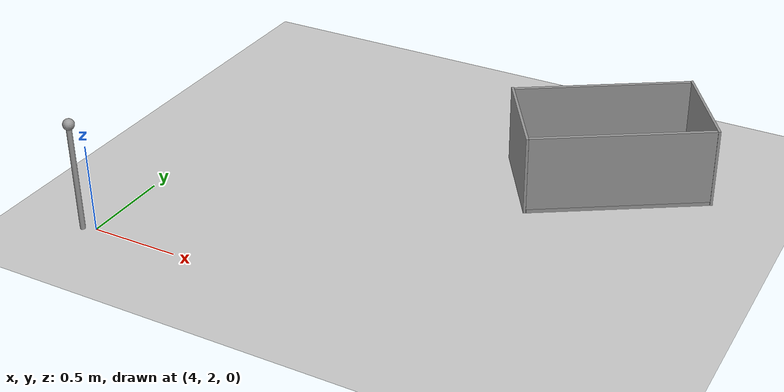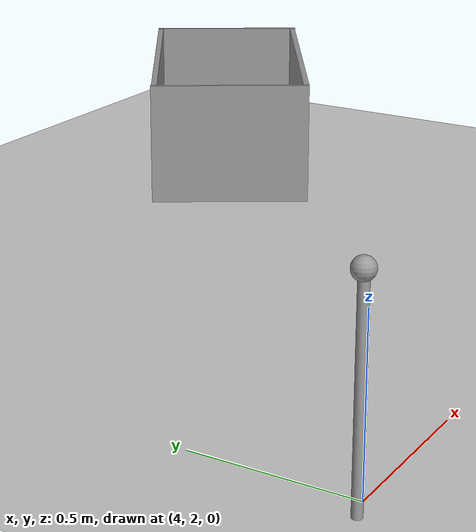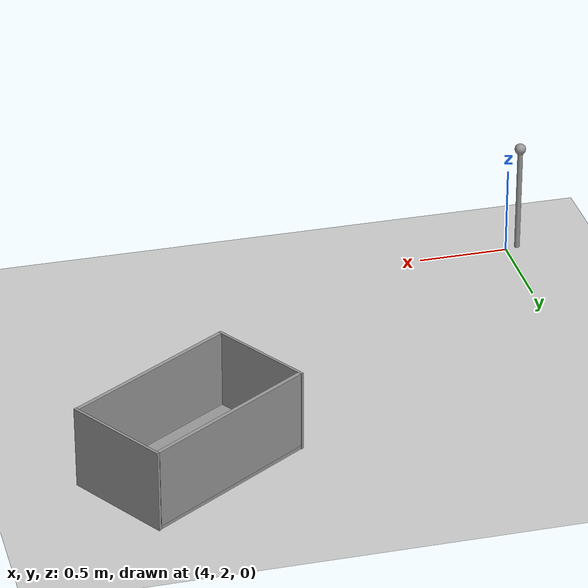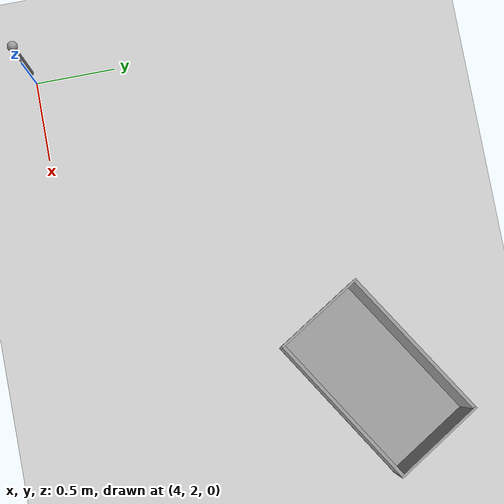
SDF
<sdf version="1.7">
 <world name="default">
  <light name="sun" type="directional">
   <pose>0 0 10 0 -0 0</pose>
   <diffuse>0.8 0.8 0.8 1</diffuse>
   <specular>0.2 0.2 0.2 1</specular>
   <attenuation>
    <range>1000</range>
    <constant>0.9</constant>
    <linear>0.01</linear>
    <quadratic>0.001</quadratic>
   </attenuation>
   <direction>-0.5 0.1 -0.9</direction>
   <spot><inner_angle>0</inner_angle><outer_angle>0</outer_angle><falloff>0</falloff></spot>
  </light>
  <model name="ground_plane">
   <static>1</static>
   <link name="link">
    <collision name="collision">
     <geometry><plane><normal>0 0 1</normal><size>100 100</size></plane></geometry>
     <surface>
      <contact><collide_bitmask>65535</collide_bitmask></contact>
      <friction><ode><mu>100</mu><mu2>50</mu2></ode></friction>
     </surface>
    </collision>
    <visual name="visual">
     <cast_shadows>0</cast_shadows>
     <geometry><plane><normal>0 0 1</normal><size>100 100</size></plane></geometry>
     <material>
      <script><uri>file://media/materials/scripts/gazebo.material</uri><name>Gazebo/Grey</name></script>
     </material>
    </visual>
   </link>
  </model>
  <gravity>0 0 -9.8</gravity>
  <magnetic_field>6e-06 2.3e-05 -4.2e-05</magnetic_field>
  <atmosphere type="adiabatic"/>
  <physics type="ode">
   <max_step_size>0.001</max_step_size>
   <real_time_factor>1</real_time_factor>
   <real_time_update_rate>1000</real_time_update_rate>
  </physics>
  <scene><ambient>0.4 0.4 0.4 1</ambient><background>0.7 0.7 0.7 1</background><shadows>1</shadows></scene>
  <spherical_coordinates>
   <surface_model>EARTH_WGS84</surface_model>
   <latitude_deg>0</latitude_deg>
   <longitude_deg>0</longitude_deg>
   <elevation>0</elevation>
   <heading_deg>0</heading_deg>
  </spherical_coordinates>
  <model name="unit_cylinder">
   <pose>3.92844 1.97948 0.299512 -1.6e-05 8e-06 0.111052</pose>
   <link name="link">
    <inertial>
     <mass>100</mass>
     <inertia><ixx>0.145833</ixx><ixy>0</ixy><ixz>0</ixz><iyy>0.145833</iyy><iyz>0</iyz><izz>0.125</izz></inertia>
    </inertial>
    <collision name="collision">
     <geometry><cylinder><radius>0.0147884</radius><length>0.599063</length></cylinder></geometry>
    </collision>
    <visual name="visual">
     <geometry><cylinder><radius>0.0147884</radius><length>0.599063</length></cylinder></geometry>
     <material>
      <script><name>Gazebo/Grey</name><uri>file://media/materials/scripts/gazebo.material</uri></script>
     </material>
    </visual>
   </link>
  </model>
  <model name="unit_sphere">
   <pose>3.92973 1.98105 0.622497 -0.000895 0.001166 -1e-06</pose>
   <link name="link">
    <inertial>
     <mass>0.02</mass>
     <inertia><ixx>0.1</ixx><ixy>0</ixy><ixz>0</ixz><iyy>0.1</iyy><iyz>0</iyz><izz>0.1</izz></inertia>
    </inertial>
    <collision name="collision"><geometry><sphere><radius>0.0312711</radius></sphere></geometry></collision>
    <visual name="visual">
     <geometry><sphere><radius>0.0312711</radius></sphere></geometry>
     <material>
      <script><name>Gazebo/Grey</name><uri>file://media/materials/scripts/gazebo.material</uri></script>
     </material>
    </visual>
   </link>
  </model>
  <model name="unit_box_1">
   <pose>6.1999 3.71762 0.010946 3.2e-05 -0 0.561026</pose>
   <link name="link">
    <inertial>
     <mass>1</mass>
     <inertia>
      <ixx>0.166667</ixx>
      <ixy>0</ixy>
      <ixz>0</ixz>
      <iyy>0.166667</iyy>
      <iyz>0</iyz>
      <izz>0.166667</izz>
     </inertia>
    </inertial>
    <collision name="collision"><geometry><box><size>1 0.588725 0.021948</size></box></geometry></collision>
    <visual name="visual">
     <geometry><box><size>1 0.588725 0.021948</size></box></geometry>
     <material>
      <script><name>Gazebo/Grey</name><uri>file://media/materials/scripts/gazebo.material</uri></script>
     </material>
    </visual>
   </link>
  </model>
  <model name="unit_box_3">
   <pose>6.04739 3.95954 0.237869 -6.6e-05 -1.3e-05 0.563555</pose>
   <link name="link">
    <inertial>
     <mass>1</mass>
     <inertia>
      <ixx>0.166667</ixx>
      <ixy>0</ixy>
      <ixz>0</ixz>
      <iyy>0.166667</iyy>
      <iyz>0</iyz>
      <izz>0.166667</izz>
     </inertia>
    </inertial>
    <collision name="collision">
     <geometry><box><size>0.998746 0.021107 0.431854</size></box></geometry>
    </collision>
    <visual name="visual">
     <geometry><box><size>0.998746 0.021107 0.431854</size></box></geometry>
     <material>
      <script><name>Gazebo/Grey</name><uri>file://media/materials/scripts/gazebo.material</uri></script>
     </material>
    </visual>
   </link>
  </model>
  <model name="unit_box_5">
   <pose>6.3512 3.47726 0.237838 7.5e-05 -0 0.561043</pose>
   <link name="link">
    <inertial>
     <mass>1</mass>
     <inertia>
      <ixx>0.166667</ixx>
      <ixy>0</ixy>
      <ixz>0</ixz>
      <iyy>0.166667</iyy>
      <iyz>0</iyz>
      <izz>0.166667</izz>
     </inertia>
    </inertial>
    <collision name="collision"><geometry><box><size>1.00317 0.021107 0.431854</size></box></geometry></collision>
    <visual name="visual">
     <geometry><box><size>1.00317 0.021107 0.431854</size></box></geometry>
     <material>
      <script><name>Gazebo/Grey</name><uri>file://media/materials/scripts/gazebo.material</uri></script>
     </material>
    </visual>
   </link>
  </model>
  <model name="unit_box_2">
   <pose>6.62984 3.98879 0.227641 1.1e-05 0.000362 0.564447</pose>
   <link name="link">
    <inertial>
     <mass>1</mass>
     <inertia>
      <ixx>0.166667</ixx>
      <ixy>0</ixy>
      <ixz>0</ixz>
      <iyy>0.166667</iyy>
      <iyz>0</iyz>
      <izz>0.166667</izz>
     </inertia>
    </inertial>
    <collision name="collision">
     <geometry><box><size>0.014373 0.593766 0.455284</size></box></geometry>
    </collision>
    <visual name="visual">
     <geometry><box><size>0.014373 0.593766 0.455284</size></box></geometry>
     <material>
      <script><name>Gazebo/Grey</name><uri>file://media/materials/scripts/gazebo.material</uri></script>
     </material>
    </visual>
   </link>
  </model>
  <model name="unit_box_4">
   <pose>5.76894 3.44872 0.227054 -1e-06 -0.000231 0.558535</pose>
   <link name="link">
    <inertial>
     <mass>1</mass>
     <inertia>
      <ixx>0.166667</ixx>
      <ixy>0</ixy>
      <ixz>0</ixz>
      <iyy>0.166667</iyy>
      <iyz>0</iyz>
      <izz>0.166667</izz>
     </inertia>
    </inertial>
    <collision name="collision">
     <geometry><box><size>0.014373 0.592029 0.454103</size></box></geometry>
    </collision>
    <visual name="visual">
     <geometry><box><size>0.014373 0.592029 0.454103</size></box></geometry>
     <material>
      <script><name>Gazebo/Grey</name><uri>file://media/materials/scripts/gazebo.material</uri></script>
     </material>
    </visual>
   </link>
  </model>
 </world>
</sdf>
